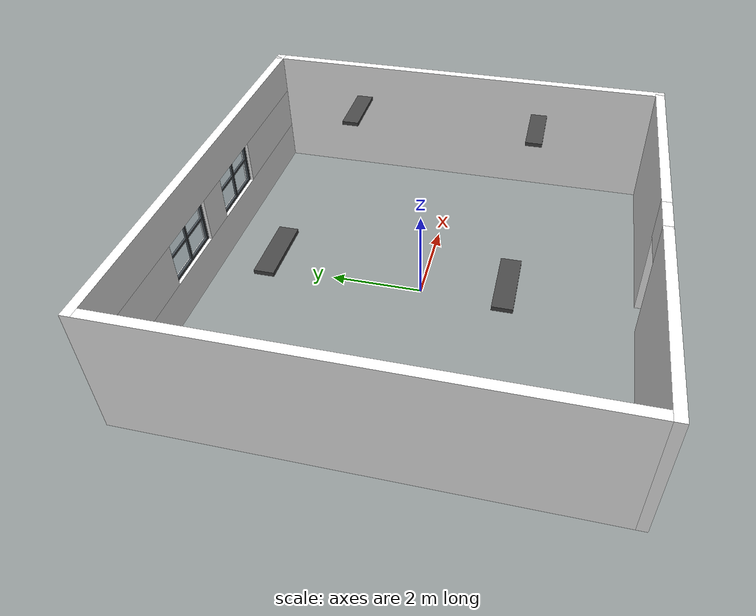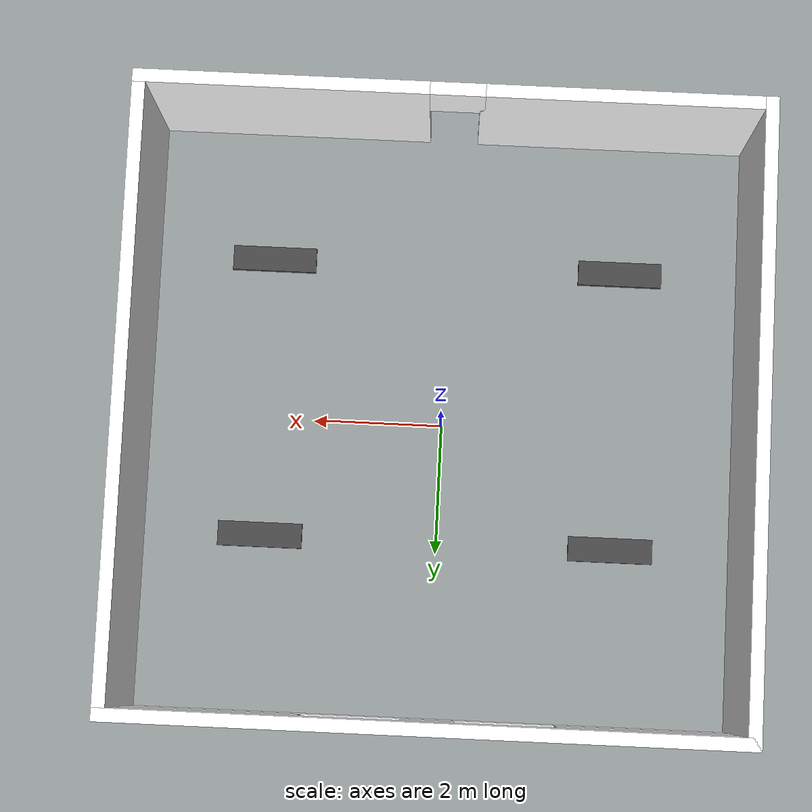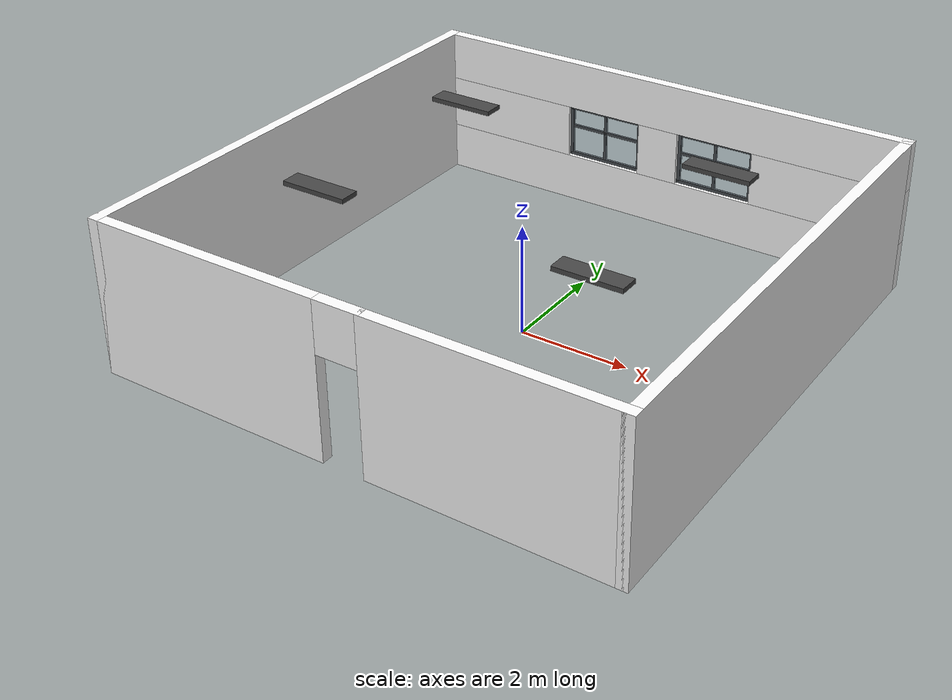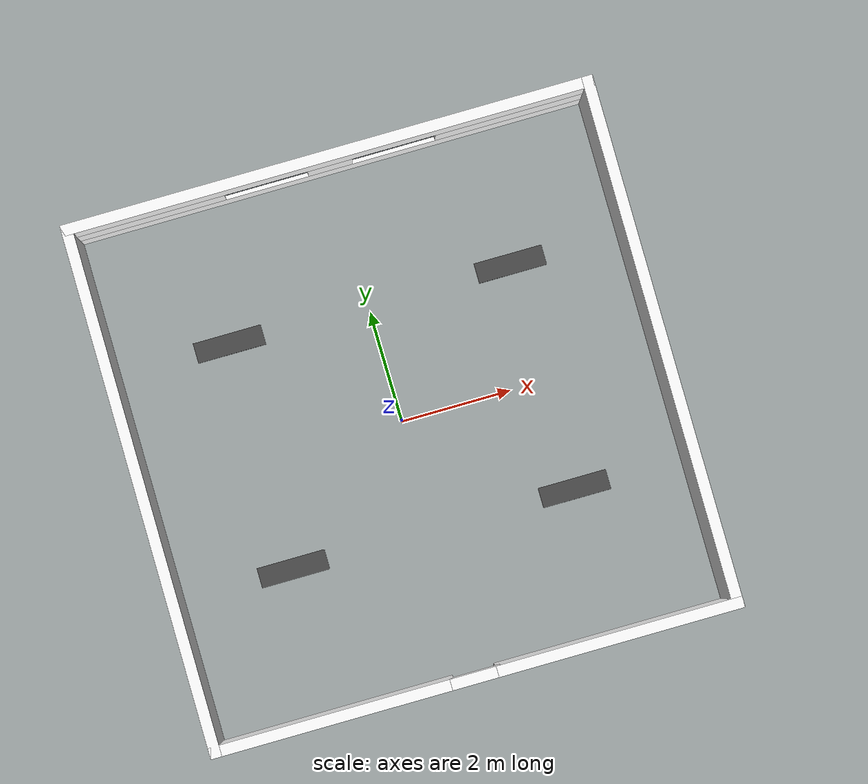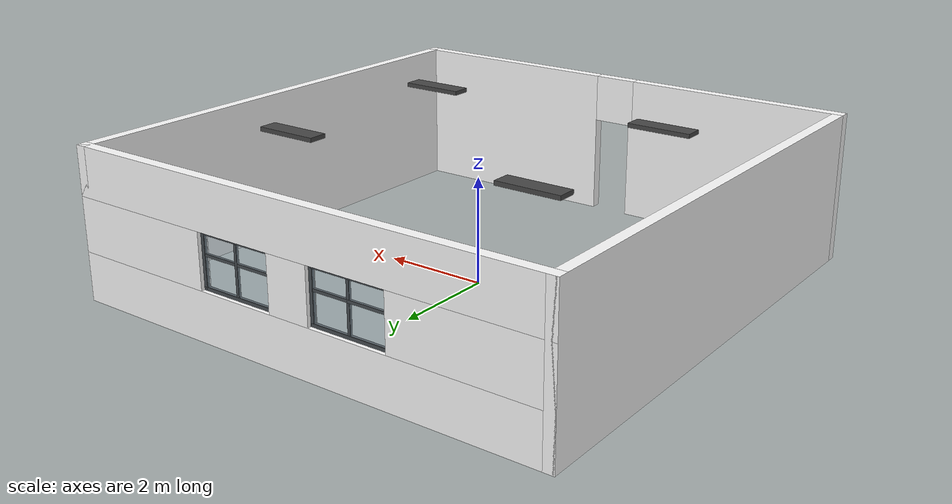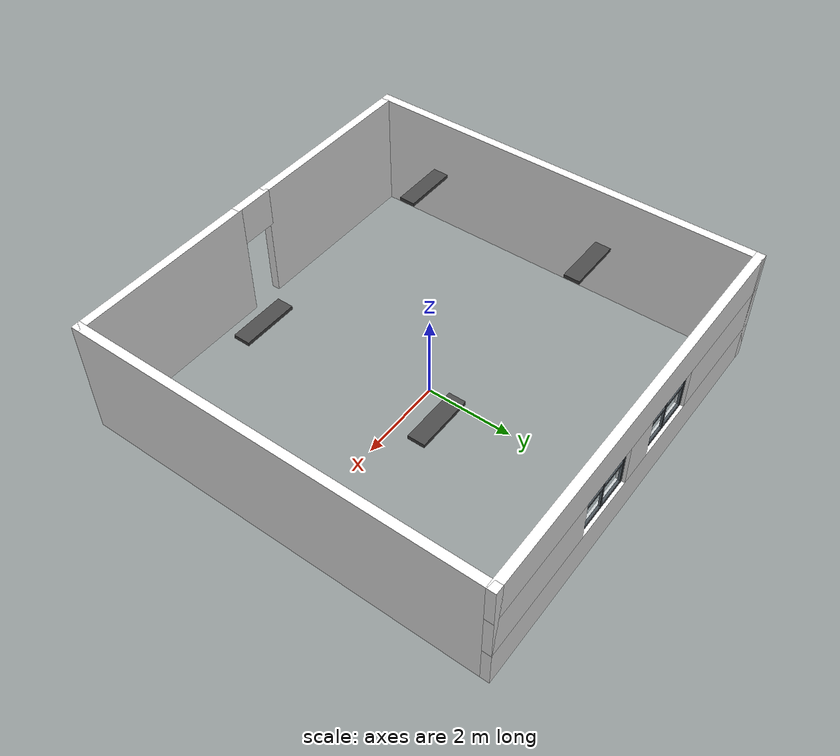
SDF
<sdf version="1.12">
 <world name="small_factory_room">
  <plugin name="gz::sim::systems::Physics" filename="gz-sim-physics-system"/>
  <plugin name="gz::sim::systems::Sensors" filename="gz-sim-sensors-system">
   <render_engine>ogre2</render_engine>
  </plugin>
  <plugin name="gz::sim::systems::SceneBroadcaster" filename="gz-sim-scene-broadcaster-system"/>
  <plugin name="gz::sim::systems::UserCommands" filename="gz-sim-user-commands-system"/>
  <gravity>0 0 -9.8100000000000005</gravity>
  <physics name="factory_physics" type="ode">
   <max_step_size>0.0040000000000000001</max_step_size>
   <real_time_factor>1</real_time_factor>
   <real_time_update_rate>250</real_time_update_rate>
  </physics>
  <scene>
   <ambient>0.300000012 0.300000012 0.300000012 1</ambient>
   <background>0.119999997 0.119999997 0.140000001 1</background>
   <grid>false</grid>
   <shadows>true</shadows>
  </scene>
  <magnetic_field>5.5644999999999998e-06 2.2875799999999999e-05 -4.2388400000000002e-05</magnetic_field>
  <atmosphere type="adiabatic"/>
  <joint name="ur5_rg2_world_joint" type="fixed"><parent>world</parent><child>ur5_rg2::base_link</child></joint>
  <model name="north_wall">
   <static>true</static>
   <link name="north_wall_lower_link">
    <pose>0 4.6500000000000004 0.55000000000000004 0 0 0</pose>
    <collision name="north_wall_lower_collision">
     <geometry><box><size>9.5 0.20000000000000001 0.90000000000000002</size></box></geometry>
    </collision>
    <visual name="north_wall_lower_visual">
     <geometry>
      <mesh>
       <uri>file:///home/nearteh/Documents/Gazebo World/my_world/models/Walls/meshes/north_wall_lower.obj</uri>
      </mesh>
     </geometry>
     <material>
      <ambient>1 1 1 1</ambient>
      <diffuse>1 1 1 1</diffuse>
      <specular>0.150000006 0.150000006 0.150000006 1</specular>
      <pbr>
       <metal>
        <albedo_map>file:///home/nearteh/Documents/Gazebo World/my_world/models/Walls/textures/plastered_wall_02_1k/textures/plastered_wall_02_diff_1k.jpg</albedo_map>
        <roughness_map>file:///home/nearteh/Documents/Gazebo World/my_world/models/Walls/textures/plastered_wall_02_1k/textures/plastered_wall_02_rough_1k.exr</roughness_map>
        <metalness>0.0</metalness>
        <ambient_occlusion_map>file:///home/nearteh/Documents/Gazebo World/my_world/models/Walls/textures/plastered_wall_02_1k/textures/plastered_wall_02_ao_1k.jpg</ambient_occlusion_map>
        <normal_map type="tangent">file:///home/nearteh/Documents/Gazebo World/my_world/models/Walls/textures/plastered_wall_02_1k/textures/plastered_wall_02_nor_gl_1k.exr</normal_map>
       </metal>
      </pbr>
     </material>
    </visual>
    <inertial>
     <mass>1</mass>
     <inertia><ixx>1</ixx><ixy>0</ixy><ixz>0</ixz><iyy>1</iyy><iyz>0</iyz><izz>1</izz></inertia>
    </inertial>
   </link>
   <link name="north_wall_upper_link">
    <pose>0 4.6500000000000004 2.4500000000000002 0 0 0</pose>
    <collision name="north_wall_upper_collision">
     <geometry><box><size>9.5 0.20000000000000001 0.90000000000000002</size></box></geometry>
    </collision>
    <visual name="north_wall_upper_visual">
     <geometry>
      <mesh>
       <uri>file:///home/nearteh/Documents/Gazebo World/my_world/models/Walls/meshes/north_wall_upper.obj</uri>
      </mesh>
     </geometry>
     <material>
      <ambient>1 1 1 1</ambient>
      <diffuse>1 1 1 1</diffuse>
      <specular>0.150000006 0.150000006 0.150000006 1</specular>
      <pbr>
       <metal>
        <albedo_map>file:///home/nearteh/Documents/Gazebo World/my_world/models/Walls/textures/plastered_wall_02_1k/textures/plastered_wall_02_diff_1k.jpg</albedo_map>
        <roughness_map>file:///home/nearteh/Documents/Gazebo World/my_world/models/Walls/textures/plastered_wall_02_1k/textures/plastered_wall_02_rough_1k.exr</roughness_map>
        <metalness>0.0</metalness>
        <ambient_occlusion_map>file:///home/nearteh/Documents/Gazebo World/my_world/models/Walls/textures/plastered_wall_02_1k/textures/plastered_wall_02_ao_1k.jpg</ambient_occlusion_map>
        <normal_map type="tangent">file:///home/nearteh/Documents/Gazebo World/my_world/models/Walls/textures/plastered_wall_02_1k/textures/plastered_wall_02_nor_gl_1k.exr</normal_map>
       </metal>
      </pbr>
     </material>
    </visual>
    <inertial>
     <mass>1</mass>
     <inertia><ixx>1</ixx><ixy>0</ixy><ixz>0</ixz><iyy>1</iyy><iyz>0</iyz><izz>1</izz></inertia>
    </inertial>
   </link>
   <link name="north_wall_left_pier_link">
    <pose>-3.3250000000000002 4.6500000000000004 1.5 0 0 0</pose>
    <collision name="north_wall_left_pier_collision">
     <geometry><box><size>2.8500000000000001 0.20000000000000001 1</size></box></geometry>
    </collision>
    <visual name="north_wall_left_pier_visual">
     <geometry>
      <mesh>
       <uri>file:///home/nearteh/Documents/Gazebo World/my_world/models/Walls/meshes/north_wall_left_pier.obj</uri>
      </mesh>
     </geometry>
     <material>
      <ambient>1 1 1 1</ambient>
      <diffuse>1 1 1 1</diffuse>
      <specular>0.150000006 0.150000006 0.150000006 1</specular>
      <pbr>
       <metal>
        <albedo_map>file:///home/nearteh/Documents/Gazebo World/my_world/models/Walls/textures/plastered_wall_02_1k/textures/plastered_wall_02_diff_1k.jpg</albedo_map>
        <roughness_map>file:///home/nearteh/Documents/Gazebo World/my_world/models/Walls/textures/plastered_wall_02_1k/textures/plastered_wall_02_rough_1k.exr</roughness_map>
        <metalness>0.0</metalness>
        <ambient_occlusion_map>file:///home/nearteh/Documents/Gazebo World/my_world/models/Walls/textures/plastered_wall_02_1k/textures/plastered_wall_02_ao_1k.jpg</ambient_occlusion_map>
        <normal_map type="tangent">file:///home/nearteh/Documents/Gazebo World/my_world/models/Walls/textures/plastered_wall_02_1k/textures/plastered_wall_02_nor_gl_1k.exr</normal_map>
       </metal>
      </pbr>
     </material>
    </visual>
    <inertial>
     <mass>1</mass>
     <inertia><ixx>1</ixx><ixy>0</ixy><ixz>0</ixz><iyy>1</iyy><iyz>0</iyz><izz>1</izz></inertia>
    </inertial>
   </link>
   <link name="north_wall_center_pier_link">
    <pose>0 4.6500000000000004 1.5 0 0 0</pose>
    <collision name="north_wall_center_pier_collision">
     <geometry><box><size>0.80000000000000004 0.20000000000000001 1</size></box></geometry>
    </collision>
    <visual name="north_wall_center_pier_visual">
     <geometry>
      <mesh>
       <uri>file:///home/nearteh/Documents/Gazebo World/my_world/models/Walls/meshes/north_wall_center_pier.obj</uri>
      </mesh>
     </geometry>
     <material>
      <ambient>1 1 1 1</ambient>
      <diffuse>1 1 1 1</diffuse>
      <specular>0.150000006 0.150000006 0.150000006 1</specular>
      <pbr>
       <metal>
        <albedo_map>file:///home/nearteh/Documents/Gazebo World/my_world/models/Walls/textures/plastered_wall_02_1k/textures/plastered_wall_02_diff_1k.jpg</albedo_map>
        <roughness_map>file:///home/nearteh/Documents/Gazebo World/my_world/models/Walls/textures/plastered_wall_02_1k/textures/plastered_wall_02_rough_1k.exr</roughness_map>
        <metalness>0.0</metalness>
        <ambient_occlusion_map>file:///home/nearteh/Documents/Gazebo World/my_world/models/Walls/textures/plastered_wall_02_1k/textures/plastered_wall_02_ao_1k.jpg</ambient_occlusion_map>
        <normal_map type="tangent">file:///home/nearteh/Documents/Gazebo World/my_world/models/Walls/textures/plastered_wall_02_1k/textures/plastered_wall_02_nor_gl_1k.exr</normal_map>
       </metal>
      </pbr>
     </material>
    </visual>
    <inertial>
     <mass>1</mass>
     <inertia><ixx>1</ixx><ixy>0</ixy><ixz>0</ixz><iyy>1</iyy><iyz>0</iyz><izz>1</izz></inertia>
    </inertial>
   </link>
   <link name="north_wall_right_pier_link">
    <pose>3.3250000000000002 4.6500000000000004 1.5 0 0 0</pose>
    <collision name="north_wall_right_pier_collision">
     <geometry><box><size>2.8500000000000001 0.20000000000000001 1</size></box></geometry>
    </collision>
    <visual name="north_wall_right_pier_visual">
     <geometry>
      <mesh>
       <uri>file:///home/nearteh/Documents/Gazebo World/my_world/models/Walls/meshes/north_wall_right_pier.obj</uri>
      </mesh>
     </geometry>
     <material>
      <ambient>1 1 1 1</ambient>
      <diffuse>1 1 1 1</diffuse>
      <specular>0.150000006 0.150000006 0.150000006 1</specular>
      <pbr>
       <metal>
        <albedo_map>file:///home/nearteh/Documents/Gazebo World/my_world/models/Walls/textures/plastered_wall_02_1k/textures/plastered_wall_02_diff_1k.jpg</albedo_map>
        <roughness_map>file:///home/nearteh/Documents/Gazebo World/my_world/models/Walls/textures/plastered_wall_02_1k/textures/plastered_wall_02_rough_1k.exr</roughness_map>
        <metalness>0.0</metalness>
        <ambient_occlusion_map>file:///home/nearteh/Documents/Gazebo World/my_world/models/Walls/textures/plastered_wall_02_1k/textures/plastered_wall_02_ao_1k.jpg</ambient_occlusion_map>
        <normal_map type="tangent">file:///home/nearteh/Documents/Gazebo World/my_world/models/Walls/textures/plastered_wall_02_1k/textures/plastered_wall_02_nor_gl_1k.exr</normal_map>
       </metal>
      </pbr>
     </material>
    </visual>
    <inertial>
     <mass>1</mass>
     <inertia><ixx>1</ixx><ixy>0</ixy><ixz>0</ixz><iyy>1</iyy><iyz>0</iyz><izz>1</izz></inertia>
    </inertial>
   </link>
   <link name="north_window_left_link">
    <pose>-1.1499999999999999 4.6500000000000004 1.5 0 0 0</pose>
    <collision name="north_window_left_glass_collision">
     <geometry><box><size>1.4199999999999999 0.029999999999999999 0.92000000000000004</size></box></geometry>
    </collision>
    <visual name="north_window_left_glass_visual">
     <geometry><box><size>1.4199999999999999 0.029999999999999999 0.92000000000000004</size></box></geometry>
     <material>
      <ambient>0.620000005 0.75 0.819999993 0.300000012</ambient>
      <diffuse>0.74000001 0.860000014 0.920000017 0.300000012</diffuse>
      <specular>0.219999999 0.219999999 0.219999999 1</specular>
     </material>
     <transparency>0.59999999999999998</transparency>
    </visual>
    <visual name="north_window_left_frame_top_visual">
     <pose>0 0 0.46999999999999997 0 0 0</pose>
     <geometry><box><size>1.5 0.059999999999999998 0.059999999999999998</size></box></geometry>
     <material>
      <ambient>0.180000007 0.200000003 0.219999999 1</ambient>
      <diffuse>0.280000001 0.300000012 0.319999993 1</diffuse>
      <specular>0.0799999982 0.0799999982 0.0799999982 1</specular>
     </material>
    </visual>
    <visual name="north_window_left_frame_bottom_visual">
     <pose>0 0 -0.46999999999999997 0 0 0</pose>
     <geometry><box><size>1.5 0.059999999999999998 0.059999999999999998</size></box></geometry>
     <material>
      <ambient>0.180000007 0.200000003 0.219999999 1</ambient>
      <diffuse>0.280000001 0.300000012 0.319999993 1</diffuse>
      <specular>0.0799999982 0.0799999982 0.0799999982 1</specular>
     </material>
    </visual>
    <visual name="north_window_left_frame_left_visual">
     <pose>-0.71999999999999997 0 0 0 0 0</pose>
     <geometry><box><size>0.059999999999999998 0.059999999999999998 1</size></box></geometry>
     <material>
      <ambient>0.180000007 0.200000003 0.219999999 1</ambient>
      <diffuse>0.280000001 0.300000012 0.319999993 1</diffuse>
      <specular>0.0799999982 0.0799999982 0.0799999982 1</specular>
     </material>
    </visual>
    <visual name="north_window_left_frame_right_visual">
     <pose>0.71999999999999997 0 0 0 0 0</pose>
     <geometry><box><size>0.059999999999999998 0.059999999999999998 1</size></box></geometry>
     <material>
      <ambient>0.180000007 0.200000003 0.219999999 1</ambient>
      <diffuse>0.280000001 0.300000012 0.319999993 1</diffuse>
      <specular>0.0799999982 0.0799999982 0.0799999982 1</specular>
     </material>
    </visual>
    <visual name="north_window_left_frame_center_visual">
     <geometry><box><size>0.050000000000000003 0.050000000000000003 0.92000000000000004</size></box></geometry>
     <material>
      <ambient>0.180000007 0.200000003 0.219999999 1</ambient>
      <diffuse>0.280000001 0.300000012 0.319999993 1</diffuse>
      <specular>0.0799999982 0.0799999982 0.0799999982 1</specular>
     </material>
    </visual>
    <visual name="north_window_left_frame_transom_visual">
     <pose>0 0 0.10000000000000001 0 0 0</pose>
     <geometry><box><size>1.4199999999999999 0.050000000000000003 0.050000000000000003</size></box></geometry>
     <material>
      <ambient>0.180000007 0.200000003 0.219999999 1</ambient>
      <diffuse>0.280000001 0.300000012 0.319999993 1</diffuse>
      <specular>0.0799999982 0.0799999982 0.0799999982 1</specular>
     </material>
    </visual>
    <inertial>
     <mass>1</mass>
     <inertia><ixx>1</ixx><ixy>0</ixy><ixz>0</ixz><iyy>1</iyy><iyz>0</iyz><izz>1</izz></inertia>
    </inertial>
   </link>
   <link name="north_window_right_link">
    <pose>1.1499999999999999 4.6500000000000004 1.5 0 0 0</pose>
    <collision name="north_window_right_glass_collision">
     <geometry><box><size>1.4199999999999999 0.029999999999999999 0.92000000000000004</size></box></geometry>
    </collision>
    <visual name="north_window_right_glass_visual">
     <geometry><box><size>1.4199999999999999 0.029999999999999999 0.92000000000000004</size></box></geometry>
     <material>
      <ambient>0.620000005 0.75 0.819999993 0.300000012</ambient>
      <diffuse>0.74000001 0.860000014 0.920000017 0.300000012</diffuse>
      <specular>0.219999999 0.219999999 0.219999999 1</specular>
     </material>
     <transparency>0.59999999999999998</transparency>
    </visual>
    <visual name="north_window_right_frame_top_visual">
     <pose>0 0 0.46999999999999997 0 0 0</pose>
     <geometry><box><size>1.5 0.059999999999999998 0.059999999999999998</size></box></geometry>
     <material>
      <ambient>0.180000007 0.200000003 0.219999999 1</ambient>
      <diffuse>0.280000001 0.300000012 0.319999993 1</diffuse>
      <specular>0.0799999982 0.0799999982 0.0799999982 1</specular>
     </material>
    </visual>
    <visual name="north_window_right_frame_bottom_visual">
     <pose>0 0 -0.46999999999999997 0 0 0</pose>
     <geometry><box><size>1.5 0.059999999999999998 0.059999999999999998</size></box></geometry>
     <material>
      <ambient>0.180000007 0.200000003 0.219999999 1</ambient>
      <diffuse>0.280000001 0.300000012 0.319999993 1</diffuse>
      <specular>0.0799999982 0.0799999982 0.0799999982 1</specular>
     </material>
    </visual>
    <visual name="north_window_right_frame_left_visual">
     <pose>-0.71999999999999997 0 0 0 0 0</pose>
     <geometry><box><size>0.059999999999999998 0.059999999999999998 1</size></box></geometry>
     <material>
      <ambient>0.180000007 0.200000003 0.219999999 1</ambient>
      <diffuse>0.280000001 0.300000012 0.319999993 1</diffuse>
      <specular>0.0799999982 0.0799999982 0.0799999982 1</specular>
     </material>
    </visual>
    <visual name="north_window_right_frame_right_visual">
     <pose>0.71999999999999997 0 0 0 0 0</pose>
     <geometry><box><size>0.059999999999999998 0.059999999999999998 1</size></box></geometry>
     <material>
      <ambient>0.180000007 0.200000003 0.219999999 1</ambient>
      <diffuse>0.280000001 0.300000012 0.319999993 1</diffuse>
      <specular>0.0799999982 0.0799999982 0.0799999982 1</specular>
     </material>
    </visual>
    <visual name="north_window_right_frame_center_visual">
     <geometry><box><size>0.050000000000000003 0.050000000000000003 0.92000000000000004</size></box></geometry>
     <material>
      <ambient>0.180000007 0.200000003 0.219999999 1</ambient>
      <diffuse>0.280000001 0.300000012 0.319999993 1</diffuse>
      <specular>0.0799999982 0.0799999982 0.0799999982 1</specular>
     </material>
    </visual>
    <visual name="north_window_right_frame_transom_visual">
     <pose>0 0 0.10000000000000001 0 0 0</pose>
     <geometry><box><size>1.4199999999999999 0.050000000000000003 0.050000000000000003</size></box></geometry>
     <material>
      <ambient>0.180000007 0.200000003 0.219999999 1</ambient>
      <diffuse>0.280000001 0.300000012 0.319999993 1</diffuse>
      <specular>0.0799999982 0.0799999982 0.0799999982 1</specular>
     </material>
    </visual>
    <inertial>
     <mass>1</mass>
     <inertia><ixx>1</ixx><ixy>0</ixy><ixz>0</ixz><iyy>1</iyy><iyz>0</iyz><izz>1</izz></inertia>
    </inertial>
   </link>
  </model>
  <model name="south_wall">
   <static>true</static>
   <link name="south_wall_left_link">
    <pose>-2.5625 -4.6500000000000004 1.5 0 0 0</pose>
    <collision name="south_wall_left_collision">
     <geometry><box><size>4.375 0.20000000000000001 2.7999999999999998</size></box></geometry>
    </collision>
    <visual name="south_wall_left_visual">
     <geometry>
      <mesh>
       <uri>file:///home/nearteh/Documents/Gazebo World/my_world/models/Walls/meshes/south_wall_left.obj</uri>
      </mesh>
     </geometry>
     <material>
      <ambient>1 1 1 1</ambient>
      <diffuse>1 1 1 1</diffuse>
      <specular>0.150000006 0.150000006 0.150000006 1</specular>
      <pbr>
       <metal>
        <albedo_map>file:///home/nearteh/Documents/Gazebo World/my_world/models/Walls/textures/plastered_wall_02_1k/textures/plastered_wall_02_diff_1k.jpg</albedo_map>
        <roughness_map>file:///home/nearteh/Documents/Gazebo World/my_world/models/Walls/textures/plastered_wall_02_1k/textures/plastered_wall_02_rough_1k.exr</roughness_map>
        <metalness>0.0</metalness>
        <ambient_occlusion_map>file:///home/nearteh/Documents/Gazebo World/my_world/models/Walls/textures/plastered_wall_02_1k/textures/plastered_wall_02_ao_1k.jpg</ambient_occlusion_map>
        <normal_map type="tangent">file:///home/nearteh/Documents/Gazebo World/my_world/models/Walls/textures/plastered_wall_02_1k/textures/plastered_wall_02_nor_gl_1k.exr</normal_map>
       </metal>
      </pbr>
     </material>
    </visual>
    <inertial>
     <mass>1</mass>
     <inertia><ixx>1</ixx><ixy>0</ixy><ixz>0</ixz><iyy>1</iyy><iyz>0</iyz><izz>1</izz></inertia>
    </inertial>
   </link>
   <link name="south_wall_right_link">
    <pose>2.5625 -4.6500000000000004 1.5 0 0 0</pose>
    <collision name="south_wall_right_collision">
     <geometry><box><size>4.375 0.20000000000000001 2.7999999999999998</size></box></geometry>
    </collision>
    <visual name="south_wall_right_visual">
     <geometry>
      <mesh>
       <uri>file:///home/nearteh/Documents/Gazebo World/my_world/models/Walls/meshes/south_wall_right.obj</uri>
      </mesh>
     </geometry>
     <material>
      <ambient>1 1 1 1</ambient>
      <diffuse>1 1 1 1</diffuse>
      <specular>0.150000006 0.150000006 0.150000006 1</specular>
      <pbr>
       <metal>
        <albedo_map>file:///home/nearteh/Documents/Gazebo World/my_world/models/Walls/textures/plastered_wall_02_1k/textures/plastered_wall_02_diff_1k.jpg</albedo_map>
        <roughness_map>file:///home/nearteh/Documents/Gazebo World/my_world/models/Walls/textures/plastered_wall_02_1k/textures/plastered_wall_02_rough_1k.exr</roughness_map>
        <metalness>0.0</metalness>
        <ambient_occlusion_map>file:///home/nearteh/Documents/Gazebo World/my_world/models/Walls/textures/plastered_wall_02_1k/textures/plastered_wall_02_ao_1k.jpg</ambient_occlusion_map>
        <normal_map type="tangent">file:///home/nearteh/Documents/Gazebo World/my_world/models/Walls/textures/plastered_wall_02_1k/textures/plastered_wall_02_nor_gl_1k.exr</normal_map>
       </metal>
      </pbr>
     </material>
    </visual>
    <inertial>
     <mass>1</mass>
     <inertia><ixx>1</ixx><ixy>0</ixy><ixz>0</ixz><iyy>1</iyy><iyz>0</iyz><izz>1</izz></inertia>
    </inertial>
   </link>
   <link name="south_wall_overdoor_link">
    <pose>0 -4.6500000000000004 2.4422750000000004 0 0 0</pose>
    <collision name="south_wall_overdoor_collision">
     <geometry><box><size>0.90000000000000002 0.20000000000000001 0.91544999999999999</size></box></geometry>
    </collision>
    <visual name="south_wall_overdoor_visual">
     <geometry>
      <mesh>
       <uri>file:///home/nearteh/Documents/Gazebo World/my_world/models/Walls/meshes/south_wall_overdoor.obj</uri>
      </mesh>
     </geometry>
     <material>
      <ambient>1 1 1 1</ambient>
      <diffuse>1 1 1 1</diffuse>
      <specular>0.150000006 0.150000006 0.150000006 1</specular>
      <pbr>
       <metal>
        <albedo_map>file:///home/nearteh/Documents/Gazebo World/my_world/models/Walls/textures/plastered_wall_02_1k/textures/plastered_wall_02_diff_1k.jpg</albedo_map>
        <roughness_map>file:///home/nearteh/Documents/Gazebo World/my_world/models/Walls/textures/plastered_wall_02_1k/textures/plastered_wall_02_rough_1k.exr</roughness_map>
        <metalness>0.0</metalness>
        <ambient_occlusion_map>file:///home/nearteh/Documents/Gazebo World/my_world/models/Walls/textures/plastered_wall_02_1k/textures/plastered_wall_02_ao_1k.jpg</ambient_occlusion_map>
        <normal_map type="tangent">file:///home/nearteh/Documents/Gazebo World/my_world/models/Walls/textures/plastered_wall_02_1k/textures/plastered_wall_02_nor_gl_1k.exr</normal_map>
       </metal>
      </pbr>
     </material>
    </visual>
    <inertial>
     <mass>1</mass>
     <inertia><ixx>1</ixx><ixy>0</ixy><ixz>0</ixz><iyy>1</iyy><iyz>0</iyz><izz>1</izz></inertia>
    </inertial>
   </link>
  </model>
  <model name="east_wall">
   <static>true</static>
   <link name="east_wall_link">
    <pose>4.6500000000000004 0 1.5 0 0 1.5708</pose>
    <collision name="east_wall_collision">
     <geometry><box><size>9.5 0.20000000000000001 2.7999999999999998</size></box></geometry>
    </collision>
    <visual name="east_wall_visual">
     <geometry>
      <mesh><uri>file:///home/nearteh/Documents/Gazebo World/my_world/models/Walls/meshes/east_wall.obj</uri></mesh>
     </geometry>
     <material>
      <ambient>1 1 1 1</ambient>
      <diffuse>1 1 1 1</diffuse>
      <specular>0.150000006 0.150000006 0.150000006 1</specular>
      <pbr>
       <metal>
        <albedo_map>file:///home/nearteh/Documents/Gazebo World/my_world/models/Walls/textures/plastered_wall_02_1k/textures/plastered_wall_02_diff_1k.jpg</albedo_map>
        <roughness_map>file:///home/nearteh/Documents/Gazebo World/my_world/models/Walls/textures/plastered_wall_02_1k/textures/plastered_wall_02_rough_1k.exr</roughness_map>
        <metalness>0.0</metalness>
        <ambient_occlusion_map>file:///home/nearteh/Documents/Gazebo World/my_world/models/Walls/textures/plastered_wall_02_1k/textures/plastered_wall_02_ao_1k.jpg</ambient_occlusion_map>
        <normal_map type="tangent">file:///home/nearteh/Documents/Gazebo World/my_world/models/Walls/textures/plastered_wall_02_1k/textures/plastered_wall_02_nor_gl_1k.exr</normal_map>
       </metal>
      </pbr>
     </material>
    </visual>
    <inertial>
     <mass>1</mass>
     <inertia><ixx>1</ixx><ixy>0</ixy><ixz>0</ixz><iyy>1</iyy><iyz>0</iyz><izz>1</izz></inertia>
    </inertial>
   </link>
   <pose>0 -5.2391424532061103e-14 -8.8817841970012523e-16 0 0 1.1435297153639112e-14</pose>
  </model>
  <model name="west_wall">
   <static>true</static>
   <link name="west_wall_link">
    <pose>-4.6500000000000004 0 1.5 0 0 1.5708</pose>
    <collision name="west_wall_collision">
     <geometry><box><size>9.5 0.20000000000000001 2.7999999999999998</size></box></geometry>
    </collision>
    <visual name="west_wall_visual">
     <geometry>
      <mesh><uri>file:///home/nearteh/Documents/Gazebo World/my_world/models/Walls/meshes/west_wall.obj</uri></mesh>
     </geometry>
     <material>
      <ambient>1 1 1 1</ambient>
      <diffuse>1 1 1 1</diffuse>
      <specular>0.150000006 0.150000006 0.150000006 1</specular>
      <pbr>
       <metal>
        <albedo_map>file:///home/nearteh/Documents/Gazebo World/my_world/models/Walls/textures/plastered_wall_02_1k/textures/plastered_wall_02_diff_1k.jpg</albedo_map>
        <roughness_map>file:///home/nearteh/Documents/Gazebo World/my_world/models/Walls/textures/plastered_wall_02_1k/textures/plastered_wall_02_rough_1k.exr</roughness_map>
        <metalness>0.0</metalness>
        <ambient_occlusion_map>file:///home/nearteh/Documents/Gazebo World/my_world/models/Walls/textures/plastered_wall_02_1k/textures/plastered_wall_02_ao_1k.jpg</ambient_occlusion_map>
        <normal_map type="tangent">file:///home/nearteh/Documents/Gazebo World/my_world/models/Walls/textures/plastered_wall_02_1k/textures/plastered_wall_02_nor_gl_1k.exr</normal_map>
       </metal>
      </pbr>
     </material>
    </visual>
    <inertial>
     <mass>1</mass>
     <inertia><ixx>1</ixx><ixy>0</ixy><ixz>0</ixz><iyy>1</iyy><iyz>0</iyz><izz>1</izz></inertia>
    </inertial>
   </link>
   <pose>0 5.2391424532061103e-14 -8.8817841970012523e-16 0 0 1.1435297153639112e-14</pose>
  </model>
  <model name="lamp_fixture_01">
   <static>true</static>
   <link name="lamp_fixture_01_link">
    <pose>-2.5 -2 2.8599999999999999 0 0 0</pose>
    <visual name="lamp_fixture_01_housing">
     <cast_shadows>false</cast_shadows>
     <geometry><box><size>1.2 0.34999999999999998 0.080000000000000002</size></box></geometry>
     <material>
      <ambient>0.180000007 0.180000007 0.180000007 1</ambient>
      <diffuse>0.280000001 0.280000001 0.280000001 1</diffuse>
      <specular>0.0799999982 0.0799999982 0.0799999982 1</specular>
     </material>
    </visual>
    <visual name="lamp_fixture_01_diffuser">
     <cast_shadows>false</cast_shadows>
     <pose>0 0 -0.040000000000000001 0 0 0</pose>
     <geometry><box><size>1.0800000000000001 0.23999999999999999 0.029999999999999999</size></box></geometry>
     <material>
      <ambient>0.920000017 0.920000017 0.860000014 1</ambient>
      <diffuse>0.980000019 0.980000019 0.899999976 1</diffuse>
      <specular>0.140000001 0.140000001 0.140000001 1</specular>
      <emissive>0.150000006 0.150000006 0.119999997 1</emissive>
     </material>
    </visual>
    <inertial>
     <mass>1</mass>
     <inertia><ixx>1</ixx><ixy>0</ixy><ixz>0</ixz><iyy>1</iyy><iyz>0</iyz><izz>1</izz></inertia>
    </inertial>
   </link>
  </model>
  <model name="lamp_fixture_02">
   <static>true</static>
   <link name="lamp_fixture_02_link">
    <pose>2.5 -2 2.8599999999999999 0 0 0</pose>
    <visual name="lamp_fixture_02_housing">
     <cast_shadows>false</cast_shadows>
     <geometry><box><size>1.2 0.34999999999999998 0.080000000000000002</size></box></geometry>
     <material>
      <ambient>0.180000007 0.180000007 0.180000007 1</ambient>
      <diffuse>0.280000001 0.280000001 0.280000001 1</diffuse>
      <specular>0.0799999982 0.0799999982 0.0799999982 1</specular>
     </material>
    </visual>
    <visual name="lamp_fixture_02_diffuser">
     <cast_shadows>false</cast_shadows>
     <pose>0 0 -0.040000000000000001 0 0 0</pose>
     <geometry><box><size>1.0800000000000001 0.23999999999999999 0.029999999999999999</size></box></geometry>
     <material>
      <ambient>0.920000017 0.920000017 0.860000014 1</ambient>
      <diffuse>0.980000019 0.980000019 0.899999976 1</diffuse>
      <specular>0.140000001 0.140000001 0.140000001 1</specular>
      <emissive>0.150000006 0.150000006 0.119999997 1</emissive>
     </material>
    </visual>
    <inertial>
     <mass>1</mass>
     <inertia><ixx>1</ixx><ixy>0</ixy><ixz>0</ixz><iyy>1</iyy><iyz>0</iyz><izz>1</izz></inertia>
    </inertial>
   </link>
  </model>
  <model name="lamp_fixture_03">
   <static>true</static>
   <link name="lamp_fixture_03_link">
    <pose>-2.5 2 2.8599999999999999 0 0 0</pose>
    <visual name="lamp_fixture_03_housing">
     <cast_shadows>false</cast_shadows>
     <geometry><box><size>1.2 0.34999999999999998 0.080000000000000002</size></box></geometry>
     <material>
      <ambient>0.180000007 0.180000007 0.180000007 1</ambient>
      <diffuse>0.280000001 0.280000001 0.280000001 1</diffuse>
      <specular>0.0799999982 0.0799999982 0.0799999982 1</specular>
     </material>
    </visual>
    <visual name="lamp_fixture_03_diffuser">
     <cast_shadows>false</cast_shadows>
     <pose>0 0 -0.040000000000000001 0 0 0</pose>
     <geometry><box><size>1.0800000000000001 0.23999999999999999 0.029999999999999999</size></box></geometry>
     <material>
      <ambient>0.920000017 0.920000017 0.860000014 1</ambient>
      <diffuse>0.980000019 0.980000019 0.899999976 1</diffuse>
      <specular>0.140000001 0.140000001 0.140000001 1</specular>
      <emissive>0.150000006 0.150000006 0.119999997 1</emissive>
     </material>
    </visual>
    <inertial>
     <mass>1</mass>
     <inertia><ixx>1</ixx><ixy>0</ixy><ixz>0</ixz><iyy>1</iyy><iyz>0</iyz><izz>1</izz></inertia>
    </inertial>
   </link>
  </model>
  <model name="lamp_fixture_04">
   <static>true</static>
   <link name="lamp_fixture_04_link">
    <pose>2.5 2 2.8599999999999999 0 0 0</pose>
    <visual name="lamp_fixture_04_housing">
     <cast_shadows>false</cast_shadows>
     <geometry><box><size>1.2 0.34999999999999998 0.080000000000000002</size></box></geometry>
     <material>
      <ambient>0.180000007 0.180000007 0.180000007 1</ambient>
      <diffuse>0.280000001 0.280000001 0.280000001 1</diffuse>
      <specular>0.0799999982 0.0799999982 0.0799999982 1</specular>
     </material>
    </visual>
    <visual name="lamp_fixture_04_diffuser">
     <cast_shadows>false</cast_shadows>
     <pose>0 0 -0.040000000000000001 0 0 0</pose>
     <geometry><box><size>1.0800000000000001 0.23999999999999999 0.029999999999999999</size></box></geometry>
     <material>
      <ambient>0.920000017 0.920000017 0.860000014 1</ambient>
      <diffuse>0.980000019 0.980000019 0.899999976 1</diffuse>
      <specular>0.140000001 0.140000001 0.140000001 1</specular>
      <emissive>0.150000006 0.150000006 0.119999997 1</emissive>
     </material>
    </visual>
    <inertial>
     <mass>1</mass>
     <inertia><ixx>1</ixx><ixy>0</ixy><ixz>0</ixz><iyy>1</iyy><iyz>0</iyz><izz>1</izz></inertia>
    </inertial>
   </link>
  </model>
  <light name="ceiling_light_01" type="point">
   <pose>-2.5 -2 2.7999999999999998 0 0 0</pose>
   <cast_shadows>false</cast_shadows>
   <intensity>1</intensity>
   <direction>0 0 -1</direction>
   <diffuse>0.899999976 0.899999976 0.879999995 1</diffuse>
   <specular>0.100000001 0.100000001 0.100000001 1</specular>
   <attenuation>
    <range>12</range>
    <linear>0.029999999329447746</linear>
    <constant>0.5</constant>
    <quadratic>0.0020000000949949026</quadratic>
   </attenuation>
   <spot><inner_angle>0</inner_angle><outer_angle>0</outer_angle><falloff>0</falloff></spot>
  </light>
  <light name="ceiling_light_02" type="point">
   <pose>2.5 -2 2.7999999999999998 0 0 0</pose>
   <cast_shadows>false</cast_shadows>
   <intensity>1</intensity>
   <direction>0 0 -1</direction>
   <diffuse>0.899999976 0.899999976 0.879999995 1</diffuse>
   <specular>0.100000001 0.100000001 0.100000001 1</specular>
   <attenuation>
    <range>12</range>
    <linear>0.029999999329447746</linear>
    <constant>0.5</constant>
    <quadratic>0.0020000000949949026</quadratic>
   </attenuation>
   <spot><inner_angle>0</inner_angle><outer_angle>0</outer_angle><falloff>0</falloff></spot>
  </light>
  <light name="ceiling_light_03" type="point">
   <pose>-2.5 2 2.7999999999999998 0 0 0</pose>
   <cast_shadows>false</cast_shadows>
   <intensity>1</intensity>
   <direction>0 0 -1</direction>
   <diffuse>0.899999976 0.899999976 0.879999995 1</diffuse>
   <specular>0.100000001 0.100000001 0.100000001 1</specular>
   <attenuation>
    <range>12</range>
    <linear>0.029999999329447746</linear>
    <constant>0.5</constant>
    <quadratic>0.0020000000949949026</quadratic>
   </attenuation>
   <spot><inner_angle>0</inner_angle><outer_angle>0</outer_angle><falloff>0</falloff></spot>
  </light>
  <light name="ceiling_light_04" type="point">
   <pose>2.5 2 2.7999999999999998 0 0 0</pose>
   <cast_shadows>false</cast_shadows>
   <intensity>1</intensity>
   <direction>0 0 -1</direction>
   <diffuse>0.899999976 0.899999976 0.879999995 1</diffuse>
   <specular>0.100000001 0.100000001 0.100000001 1</specular>
   <attenuation>
    <range>12</range>
    <linear>0.029999999329447746</linear>
    <constant>0.5</constant>
    <quadratic>0.0020000000949949026</quadratic>
   </attenuation>
   <spot><inner_angle>0</inner_angle><outer_angle>0</outer_angle><falloff>0</falloff></spot>
  </light>
 </world>
</sdf>
